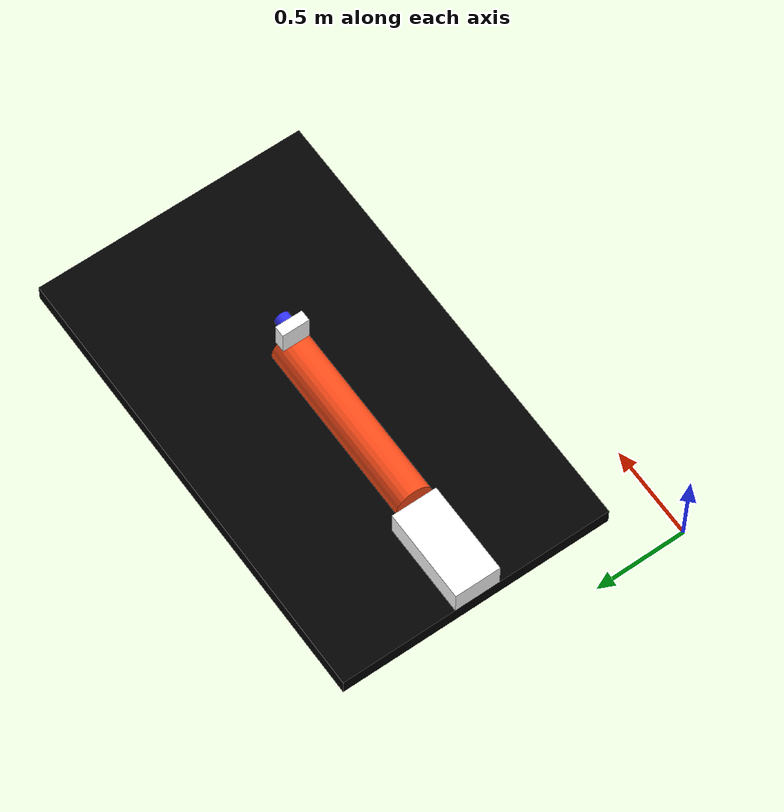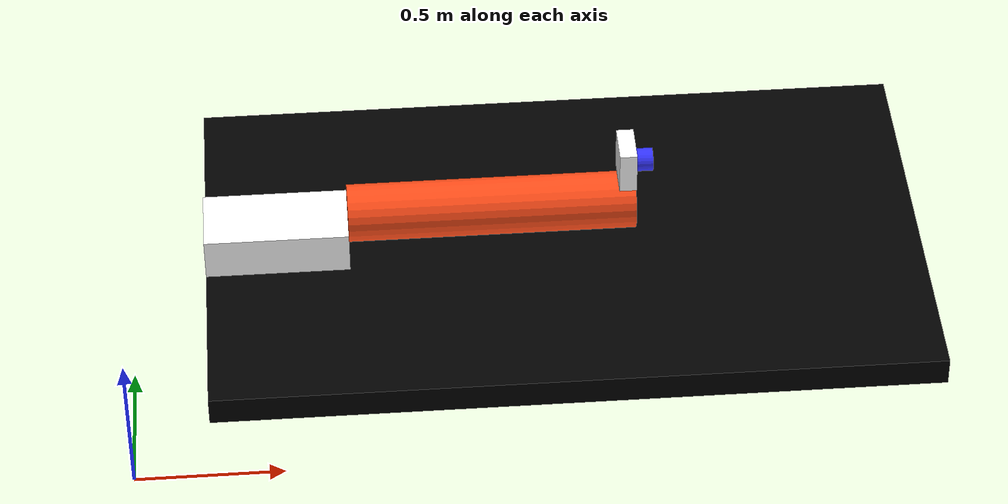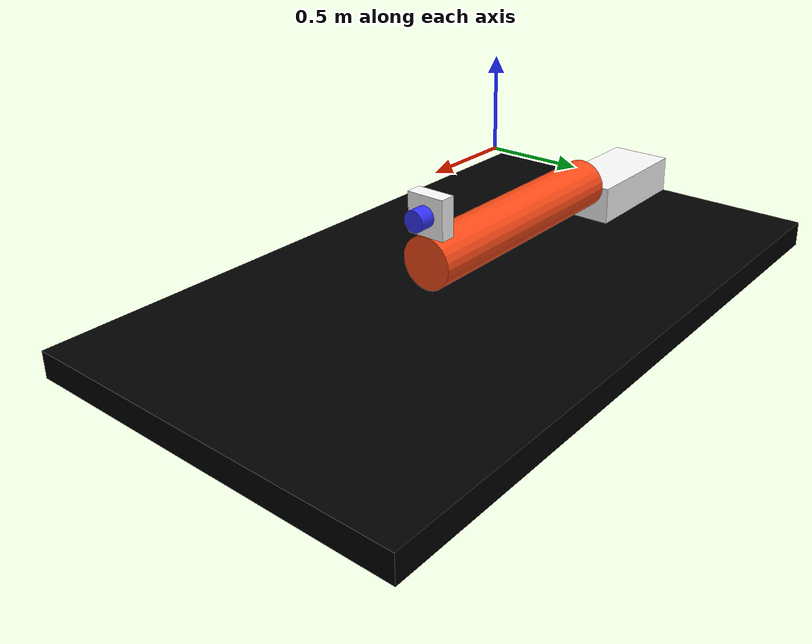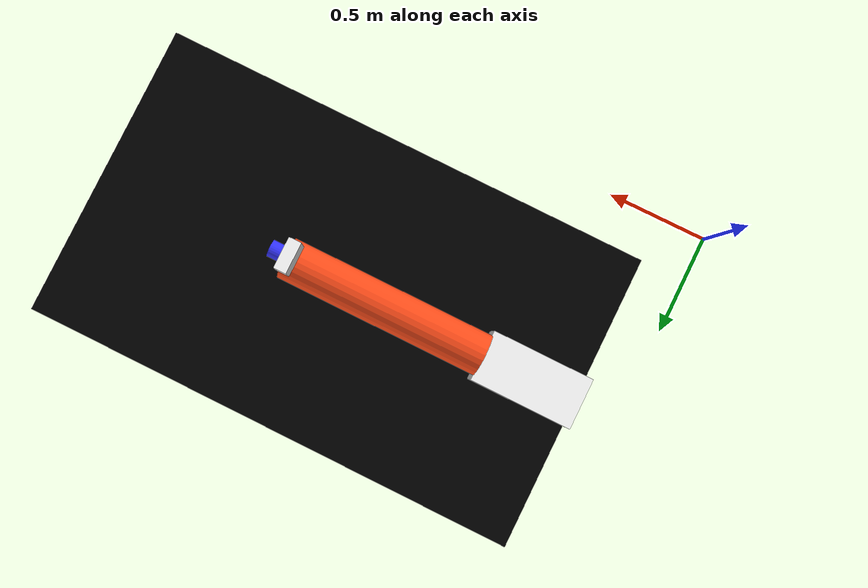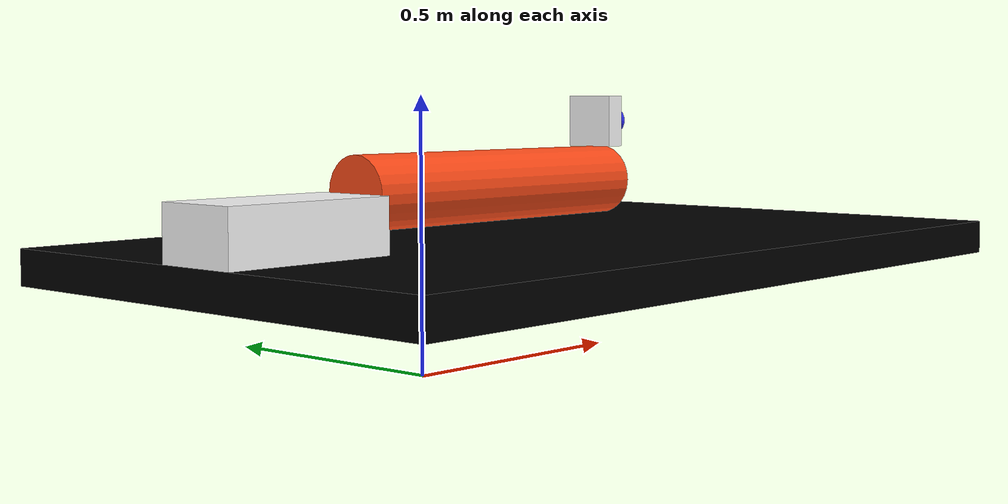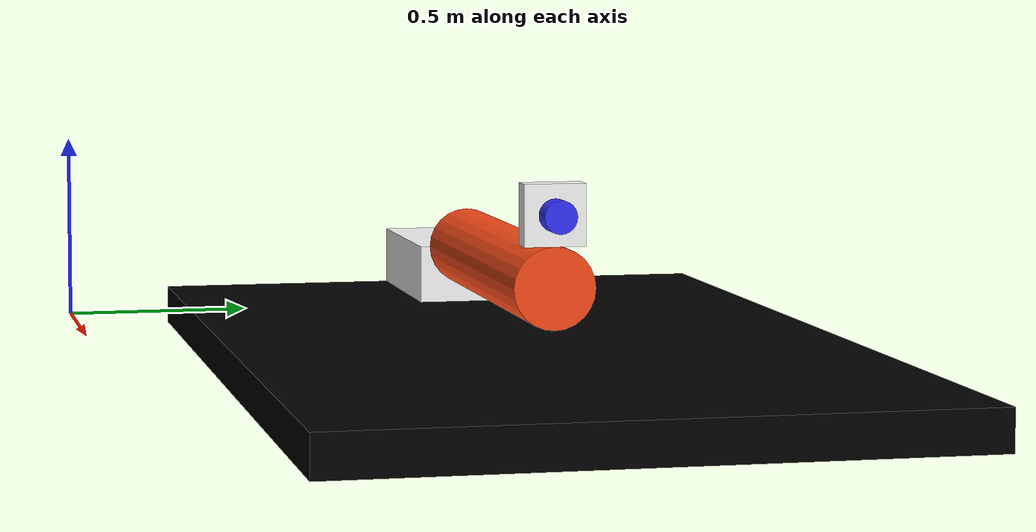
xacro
<?xml version="1.0"?>

<robot xmlns:xacro="http://www.ros.org/wiki/xacro">

    <xacro:include filename="colors.xacro"/>
    <xacro:include filename="demo_robot_params.xacro"/>
    <xacro:include filename="demo_robot_inertial_macros.xacro"/>
    <xacro:include filename="demo_robot_gazebo.xacro"/>

    <link name="world"></link>

    <!-- Common types: revolute,continuous, prismatic, fixed -->
    <!-- BASE JOINT -->
    <joint name="base_joint" type="fixed">
        <origin xyz="1.5 1.0 0.0" rpy="0.0 0.0 0.0"/>
        <parent link="world"/>
        <child link="base_link"/>
    </joint>

    <!-- BASE LINK -->
    <link name="base_link">
        <visual>
            <origin xyz="0.0 0.0 0.05" rpy="0.0 0.0 0.0"/>
            <geometry>
                <box size="2.5 1.5 0.1"/>
            </geometry>
            <material name="black"/>
        </visual>

        <collision>
            <origin xyz="0.0 0.0 0.05" rpy="0.0 0.0 0.0"/>
            <geometry>
                <box size="2.5 1.5 0.1"/>
            </geometry>
        </collision>

        <inertial>
            <origin xyz="0 0 0.05" rpy="0 0 0"/>
            <mass value="12" />
            <inertia ixx="2.26" ixy="0.0" ixz="0.0" iyy="6.26" iyz="0.0" izz="8.5" />
        </inertial>
    </link>

    <!-- SLIDER JOINT THAT WILL TRANSLATE ONLY -->
    <joint name="slider_joint" type="prismatic">
        <!-- IT SPANWS IN THE CENTER OF THE BASELINK, SO WE WILL PUT THE ORIGIN BACK TO ITS EDGE -->
        <origin xyz="-1.0 0 0.1" rpy="0 0 0"/>
        <parent link="base_link"/>
        <child link="slider_link"/>
        <!-- IN WHAT AXIS DOES IT TRANSLATE? -->
        <axis xyz="1 0 0"/>
        <limit lower="0" upper="2" velocity="100" effort="100"/>
        <dynamics damping="10.0" friction="10.0"/>
    </joint>

    <!-- SLIDER LINK OBJECT THAT WILL BE TRANSLATING -->
    <link name="slider_link">
        <visual>
            <origin xyz="0 0 0.075" rpy="0 0 0"/>
            <geometry>
                <box size="0.5 0.25 0.15" />
            </geometry>
            <material name="white" />
        </visual>
        <collision>
            <origin xyz="0 0 0.075" rpy="0 0 0"/>
            <geometry>
                <box size="0.5 0.25 0.15" />
            </geometry>
        </collision>
        <xacro:inertial_box mass="0.5" x="0.5" y="0.25" z="0.15">
            <origin xyz="0 0 0.075" rpy="0 0 0"/>
        </xacro:inertial_box>
    </link>

    <!-- ARM JOINT THAT WILL BE ROTATING -->
    <joint name="arm_joint" type="revolute">
        <origin xyz="0.25 0 0.15" rpy="0 0 0"/>
        <parent link="slider_link"/>
        <child link="arm_link"/>
        <!-- WHAT AXIS IS IT ROTATING IN AND IS IT CW OR CCW? -->
        <axis xyz="0 -1 0"/>
        <limit lower="0" upper="${pi/2}" velocity="100" effort="100"/>
        <dynamics damping="10.0" friction="10.0"/>
    </joint>

    <!-- THE ARM THAT WILL BE ROTATING -->
    <link name="arm_link">
        <visual>
            <!-- ROTATING IT ON Y AXIS SO IT START OUT AS HORIZONTAL -->
            <origin xyz="${arm_length/2} 0 0" rpy="0 ${pi/2} 0"/>
            <geometry>
                <cylinder length="${arm_length}" radius="${arm_radius}" />
            </geometry>
            <material name="orange" />
        </visual>
        <collision>
            <origin xyz="${arm_length/2} 0 0" rpy="0 ${pi/2} 0"/>
            <geometry>
                <cylinder length="${arm_length}" radius="${arm_radius}" />
            </geometry>
        </collision>
        <xacro:inertial_cylinder mass="1.0" length="${arm_length}" radius="${arm_radius}">
            <origin xyz="${arm_length/2} 0 0" rpy="0 ${pi/2} 0"/>
        </xacro:inertial_cylinder>
    </link>

    <!-- CAMERA JOINT -->
    <joint name="camera_joint" type="fixed">
        <origin xyz="${arm_length} 0 ${arm_radius + 0.075}" rpy="0 0 0"/>
        <parent link="arm_link"/>
        <child link="camera_link"/>
    </joint>

    <!-- CAMERA LINK -->
    <link name="camera_link">
        <visual>
            <origin xyz="-0.03 0 0" rpy="0 0 0"/>
            <geometry>
                <box size="0.06 0.15 0.15" />
            </geometry>
            <material name="white" />
        </visual>
        <visual>
            <origin xyz="0.03 0 0" rpy="0 ${pi/2} 0"/>
            <geometry>
                <cylinder length="0.06" radius="0.04" />
            </geometry>
            <material name="blue" />
        </visual>
        <collision>
            <origin xyz="0.0 0 0" rpy="0 0 0"/>
            <geometry>
                <box size="0.12 0.15 0.15" />
            </geometry>
        </collision>
        <xacro:inertial_box mass="0.1" x="0.12" y="0.15" z="0.15">
            <origin xyz="0.0 0 0" rpy="0 0 0"/>
        </xacro:inertial_box>
    </link>

</robot>

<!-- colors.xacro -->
<robot xmlns:xacro="http://www.ros.org/wiki/xacro">

    <material name="white">
        <color rgba="1 1 1 1" />
    </material>

    <material name="orange">
        <color rgba="1 0.3 0.1 1"/>
    </material>

    <material name="blue">
        <color rgba="0.2 0.2 1 1"/>
    </material>

    <material name="black">
        <color rgba="0 0 0 1"/>
    </material>

    <material name="red">
        <color rgba="1 0 0 1"/>
    </material>

</robot>

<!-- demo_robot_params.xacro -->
<robot xmlns:xacro="http://ros.org/wiki/xacro">

  <!-- Define parameters -->
  <xacro:property name="arm_length" value="1" />
  <xacro:property name="arm_radius" value="0.1" />

</robot>

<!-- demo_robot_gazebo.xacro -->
<robot xmlns:xacro="http://www.ros.org/wiki/xacro">

    <!-- To include it add the following line -->

    <!-- Instead, we need to add gazebo tags for our links that refer to Gazebo materials -->

    <gazebo reference="base_link">
        <material>Gazebo/Black</material>
    </gazebo>

    <gazebo reference="slider_link">
        <material>Gazebo/Blue</material>
    </gazebo>

    <gazebo reference="arm_link">
        <material>Gazebo/Red</material>
    </gazebo>

    <!-- This plugin will publish the joint_states for the selected joints
            (which robot_state_publisher can then use to broadcast the approprate tf). -->

    <gazebo>
        <plugin name="gazebo_ros_joint_state_publisher"
            filename="libgazebo_ros_joint_state_publisher.so">
            <update_rate>20</update_rate>
            <joint_name>slider_joint</joint_name>
            <joint_name>arm_joint</joint_name>
        </plugin>
    </gazebo>

    <!-- This plugin will read a JointTrajectory message from the /set_joint_trajectory topic
            and move the machine accordingly. It's a bit clunky but it works. -->
    <gazebo>
        <plugin name="gazebo_ros_joint_pose_trajectory"
            filename="libgazebo_ros_joint_pose_trajectory.so">
            <update_rate>2</update_rate>
        </plugin>
    </gazebo>

    <!-- The next section shows an example of adding a sensor, in this case a depth camera. -->

    <!-- First, create the link and joint for the optical frame -->

    <joint name="camera_optical_joint" type="fixed">
        <origin xyz="0 0 0" rpy="-1.571 0 -1.571" />
        <parent link="camera_link" />
        <child link="camera_link_optical" />
    </joint>

    <link name="camera_link_optical"></link>

    <!-- Add a gazebo tag for the ORIGINAL camera_link (but in the plugin we reference the optical frame so that ROS can orient things correctly) -->
    <!-- Note that although visualise is set to true, it won't actually visualise the depth camera in gazebo. To see the preview,
            try swapping "depth" to "camera"-->
    <gazebo reference="camera_link">
        <sensor type="camera" name="my_camera">
            <update_rate>20</update_rate>
            <visualize>true</visualize>
            <camera name="cam">
                <horizontal_fov>1.3962634</horizontal_fov>
                <image>
                    <width>640</width>
                    <height>480</height>
                    <format>R8B8G8</format>
                </image>
                <clip>
                    <near>0.02</near>
                    <far>300</far>
                </clip>
                <noise>
                    <type>gaussian</type>
                    <mean>0.0</mean>
                    <stddev>0.007</stddev>
                </noise>
            </camera>
            <plugin name="camera_controller" filename="libgazebo_ros_camera.so">
                <frame_name>camera_link_optical</frame_name>
                <min_depth>0.1</min_depth>
                <max_depth>500</max_depth>
            </plugin>
        </sensor>
    </gazebo>

</robot>
